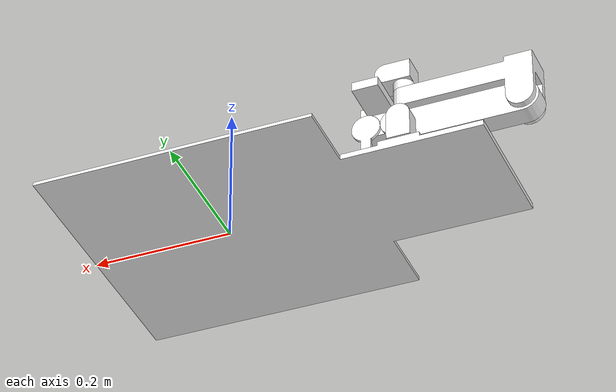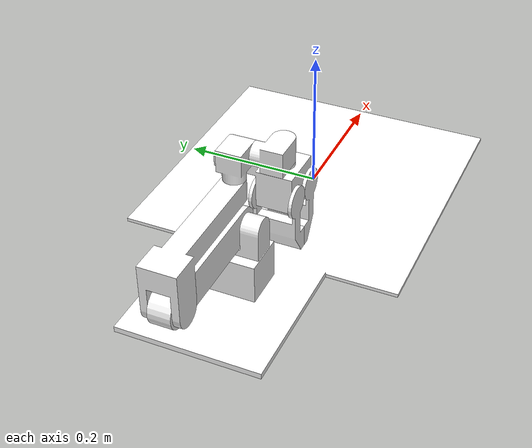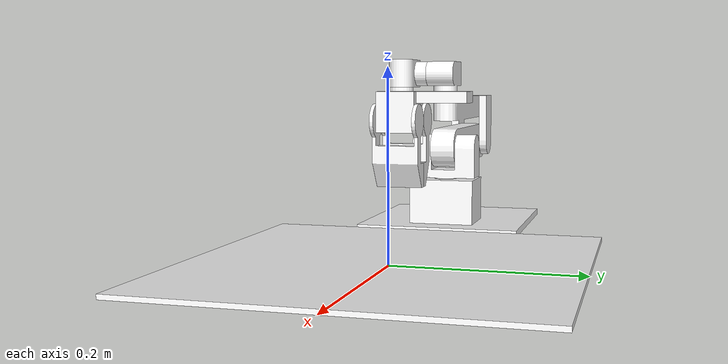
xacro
<robot name="aiot7dof_a03u01_description">

  <link name="base">
    <inertial>
      <origin xyz="-0.119 1.559E-15 0.0091554" rpy="0 0 0" />
      <mass value="1.412" />
      <inertia ixx="0.012416" ixy="3.7704E-16" ixz="0.0013447" iyy="0.039962" iyz="-9.9236E-17" izz="0.05177" />
    </inertial>
    <visual>
      <origin xyz="0 0 0" rpy="0 0 0" />
      <geometry>
        <mesh filename="package://aiot7dof_a03u01_description/meshes/visual/base.STL" />
      </geometry>
      <material name="">
        <color rgba="1 1 1 1" />
      </material>
    </visual>
    <collision>
      <origin xyz="0 0 0" rpy="0 0 0" />
      <geometry>
        <mesh filename="package://aiot7dof_a03u01_description/meshes/collision/base.STL" />
      </geometry>
    </collision>
  </link>
  <link name="link1">
    <inertial>
      <origin xyz="2.2204E-16 4.0347E-18 0.024394" rpy="0 0 0" />
      <mass value="0.098795" />
      <inertia ixx="9.499E-05" ixy="-8.4065E-19" ixz="-1.5015E-19" iyy="3.2489E-05" iyz="-1.9898E-20" izz="8.0333E-05" />
    </inertial>
    <visual>
      <origin xyz="0 0 0" rpy="0 0 0" />
      <geometry>
        <mesh filename="package://aiot7dof_a03u01_description/meshes/visual/link1.STL" />
      </geometry>
      <material name="">
        <color rgba="1 1 1 1" />
      </material>
    </visual>
    <collision>
      <origin xyz="0 0 0" rpy="0 0 0" />
      <geometry>
        <mesh filename="package://aiot7dof_a03u01_description/meshes/collision/link1.STL" />
      </geometry>
    </collision>
  </link>
  <joint name="joint1" type="revolute">
    <origin xyz="-0.26 0 0.0635" rpy="0 0 0" />
    <parent link="base" />
    <child link="link1" />
    <axis xyz="0 0 -1" />
    <limit lower="-3.1416" upper="3.1416" effort="0" velocity="0" />
  </joint>
  <link name="link2">
    <inertial>
      <origin xyz="-0.084 0.015 8.743E-16" rpy="0 0 0" />
      <mass value="0.30213" />
      <inertia ixx="7.8011E-05" ixy="1.4559E-17" ixz="1.0682E-17" iyy="0.0011292" iyz="3.8085E-21" izz="0.0010965" />
    </inertial>
    <visual>
      <origin xyz="0 0 0" rpy="0 0 0" />
      <geometry>
        <mesh filename="package://aiot7dof_a03u01_description/meshes/visual/link2.STL" />
      </geometry>
      <material name="">
        <color rgba="1 1 1 1" />
      </material>
    </visual>
    <collision>
      <origin xyz="0 0 0" rpy="0 0 0" />
      <geometry>
        <mesh filename="package://aiot7dof_a03u01_description/meshes/collision/link2.STL" />
      </geometry>
    </collision>
  </link>
  <joint name="joint2" type="revolute">
    <origin xyz="0 -0.015 0.0385" rpy="0 0 0" />
    <parent link="link1" />
    <child link="link2" />
    <axis xyz="0 1 0" />
    <limit lower="-3.1416" upper="3.1416" effort="0" velocity="0" />
  </joint>
  <link name="link3">
    <inertial>
      <origin xyz="0.060627 0.025 0.043204" rpy="0 0 0" />
      <mass value="0.25277" />
      <inertia ixx="0.00012211" ixy="1.3111E-17" ixz="-0.00010108" iyy="0.0010645" iyz="1.3E-18" izz="0.0010237" />
    </inertial>
    <visual>
      <origin xyz="0 0 0" rpy="0 0 0" />
      <geometry>
        <mesh filename="package://aiot7dof_a03u01_description/meshes/visual/link3.STL" />
      </geometry>
      <material name="">
        <color rgba="1 1 1 1" />
      </material>
    </visual>
    <collision>
      <origin xyz="0 0 0" rpy="0 0 0" />
      <geometry>
        <mesh filename="package://aiot7dof_a03u01_description/meshes/collision/link3.STL" />
      </geometry>
    </collision>
  </link>
  <joint name="joint3" type="revolute">
    <origin xyz="-0.168 -0.01 0" rpy="0 0 0" />
    <parent link="link2" />
    <child link="link3" />
    <axis xyz="0 -1 0" />
    <limit lower="-3.1416" upper="3.1416" effort="0" velocity="0" />
  </joint>
  <link name="link4">
    <inertial>
      <origin xyz="0.0075573 -1.9322E-16 0.025439" rpy="0 0 0" />
      <mass value="0.060158" />
      <inertia ixx="1.322E-05" ixy="8.2869E-20" ixz="-1.7099E-06" iyy="1.8957E-05" iyz="3.3566E-20" izz="1.6506E-05" />
    </inertial>
    <visual>
      <origin xyz="0 0 0" rpy="0 0 0" />
      <geometry>
        <mesh filename="package://aiot7dof_a03u01_description/meshes/visual/link4.STL" />
      </geometry>
      <material name="">
        <color rgba="1 1 1 1" />
      </material>
    </visual>
    <collision>
      <origin xyz="0 0 0" rpy="0 0 0" />
      <geometry>
        <mesh filename="package://aiot7dof_a03u01_description/meshes/collision/link4.STL" />
      </geometry>
    </collision>
  </link>
  <joint name="joint4" type="revolute">
    <origin xyz="0.172 0.025 0.0648" rpy="0 0 0" />
    <parent link="link3" />
    <child link="link4" />
    <axis xyz="0 0 -1" />
    <limit lower="-3.1416" upper="3.1416" effort="0" velocity="0" />
  </joint>
  <link name="link5">
    <inertial>
      <origin xyz="0.0075573 -0.025439 -1.6653E-16" rpy="0 0 0" />
      <mass value="0.060158" />
      <inertia ixx="1.322E-05" ixy="1.7099E-06" ixz="6.8212E-20" iyy="1.6506E-05" iyz="-2.6999E-20" izz="1.8957E-05" />
    </inertial>
    <visual>
      <origin xyz="0 0 0" rpy="0 0 0" />
      <geometry>
        <mesh filename="package://aiot7dof_a03u01_description/meshes/visual/link5.STL" />
      </geometry>
      <material name="">
        <color rgba="1 1 1 1" />
      </material>
    </visual>
    <collision>
      <origin xyz="0 0 0" rpy="0 0 0" />
      <geometry>
        <mesh filename="package://aiot7dof_a03u01_description/meshes/collision/link5.STL" />
      </geometry>
    </collision>
  </link>
  <joint name="joint5" type="revolute">
    <origin xyz="0.0212 -0.017 0.0292" rpy="0 0 0" />
    <parent link="link4" />
    <child link="link5" />
    <axis xyz="0 -1 0" />
    <limit lower="-3.1416" upper="3.1416" effort="0" velocity="0" />
  </joint>
  <link name="link6">
    <inertial>
      <origin xyz="-1.1102E-16 0.010488 -0.025526" rpy="0 0 0" />
      <mass value="0.17644" />
      <inertia ixx="0.00016034" ixy="-1.3441E-18" ixz="-2.9602E-19" iyy="8.515E-05" iyz="-2.5029E-05" izz="0.00016495" />
    </inertial>
    <visual>
      <origin xyz="0 0 0" rpy="0 0 0" />
      <geometry>
        <mesh filename="package://aiot7dof_a03u01_description/meshes/visual/link6.STL" />
      </geometry>
      <material name="">
        <color rgba="1 1 1 1" />
      </material>
    </visual>
    <collision>
      <origin xyz="0 0 0" rpy="0 0 0" />
      <geometry>
        <mesh filename="package://aiot7dof_a03u01_description/meshes/collision/link6.STL" />
      </geometry>
    </collision>
  </link>
  <joint name="joint6" type="revolute">
    <origin xyz="0.0212 -0.0292 -0.017" rpy="0 0 0" />
    <parent link="link5" />
    <child link="link6" />
    <axis xyz="0 0 -1" />
    <limit lower="-3.1416" upper="3.1416" effort="0" velocity="0" />
  </joint>
  <link name="gripper_left">
    <inertial>
      <origin xyz="0.0051487 -0.024 -0.04486" rpy="0 0 0" />
      <mass value="0.067219" />
      <inertia ixx="6.821E-05" ixy="-7.7868E-20" ixz="7.8176E-06" iyy="4.9436E-05" iyz="-3.7483E-19" izz="2.9403E-05" />
    </inertial>
    <visual>
      <origin xyz="0 0 0" rpy="0 0 0" />
      <geometry>
        <mesh filename="package://aiot7dof_a03u01_description/meshes/visual/gripper_left.STL" />
      </geometry>
      <material name="">
        <color rgba="1 1 1 1" />
      </material>
    </visual>
    <collision>
      <origin xyz="0 0 0" rpy="0 0 0" />
      <geometry>
        <mesh filename="package://aiot7dof_a03u01_description/meshes/collision/gripper_left.STL" />
      </geometry>
    </collision>
  </link>
  <joint name="joint_gl" type="revolute">
    <origin xyz="-0.021 0.024 -0.041" rpy="0 0 0" />
    <parent link="link6" />
    <child link="gripper_left" />
    <axis xyz="0 1 0" />
    <limit lower="-3.1416" upper="3.1416" effort="0" velocity="0" />
  </joint>
  <link name="gripper_right">
    <inertial>
      <origin xyz="-0.0051487 -0.024 -0.04486" rpy="0 0 0" />
      <mass value="0.067219" />
      <inertia ixx="6.821E-05" ixy="-4.5944E-20" ixz="-7.8176E-06" iyy="4.9436E-05" iyz="2.5233E-19" izz="2.9403E-05" />
    </inertial>
    <visual>
      <origin xyz="0 0 0" rpy="0 0 0" />
      <geometry>
        <mesh filename="package://aiot7dof_a03u01_description/meshes/visual/gripper_right.STL" />
      </geometry>
      <material name="">
        <color rgba="1 1 1 1" />
      </material>
    </visual>
    <collision>
      <origin xyz="0 0 0" rpy="0 0 0" />
      <geometry>
        <mesh filename="package://aiot7dof_a03u01_description/meshes/collision/gripper_right.STL" />
      </geometry>
    </collision>
  </link>
  <joint name="joint_gr" type="revolute">
    <origin xyz="0.021 0.024 -0.041" rpy="0 0 0" />
    <parent link="link6" />
    <child link="gripper_right" />
    <axis xyz="0 1 0" />
    <limit lower="-3.1416" upper="3.1416" effort="0" velocity="0" />
    <mimic joint="joint_gl" multiplier="-1" offset="0"/>
  </joint>
</robot>
